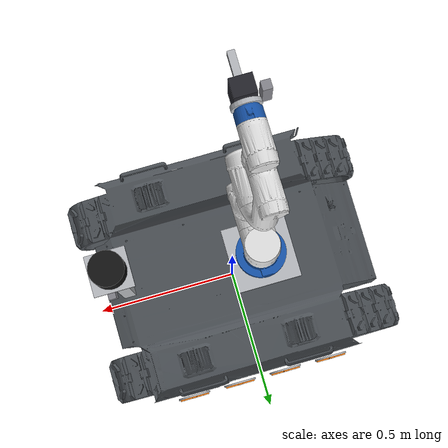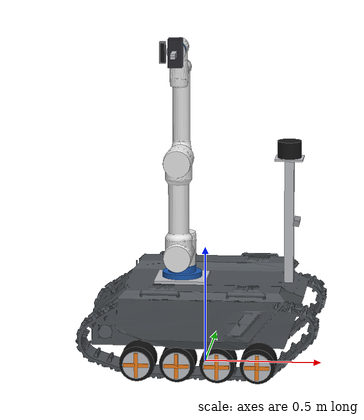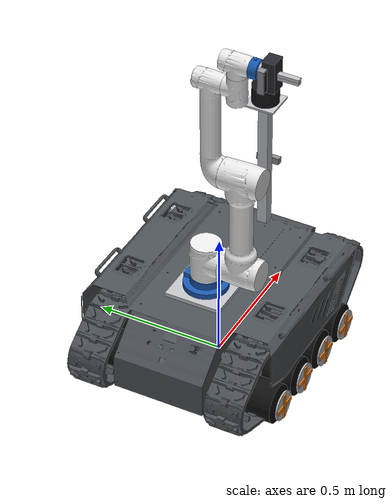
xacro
<?xml version="1.0"?>
<robot name="bunker_aubo" xmlns:xacro="http://www.ros.org/wiki/xacro">

  <xacro:arg name="sim_gazebo" default="true"/>
  <xacro:arg name="controllers_config" default=""/>
  <xacro:arg name="sensors_config" default="$(find bunker_aubo_description)/config/sensors.yaml"/>
  <xacro:arg name="initial_positions" default="$(find bunker_aubo_description)/config/initial_positions.yaml"/>

  <xacro:property name="sensors_cfg" value="${xacro.load_yaml('$(arg sensors_config)')}"/>
  <xacro:property name="initial_positions" value="${xacro.load_yaml('$(arg initial_positions)')}"/>

  <xacro:include filename="$(find bunker_aubo_description)/urdf/common/inertial_macros.xacro"/>
  <xacro:include filename="$(find bunker_aubo_description)/urdf/common/materials.xacro"/>
  <xacro:include filename="$(find bunker_aubo_description)/urdf/bunker/bunker_base.xacro"/>
  <xacro:include filename="$(find bunker_aubo_description)/urdf/aubo/aubo_i5.xacro"/>
  <xacro:include filename="$(find bunker_aubo_description)/urdf/gripper/parallel_gripper.xacro"/>
  <xacro:include filename="$(find bunker_aubo_description)/urdf/sensors/imu.xacro"/>
  <xacro:include filename="$(find bunker_aubo_description)/urdf/sensors/vlp16.xacro"/>
  <xacro:include filename="$(find bunker_aubo_description)/urdf/sensors/d435.xacro"/>
  <xacro:include filename="$(find bunker_aubo_description)/urdf/control/ros2_control.xacro"/>
  <xacro:include filename="$(find bunker_aubo_description)/urdf/gazebo.xacro"/>

  <xacro:bunker_base/>

  <xacro:aubo_i5 parent="arm_mount_link">
    <origin xyz="0 0 ${arm_mount_thick}" rpy="0 0 0"/>
  </xacro:aubo_i5>

  <xacro:parallel_gripper parent="tool0">
    <origin xyz="0 0 0" rpy="0 0 0"/>
  </xacro:parallel_gripper>

  <xacro:imu_sensor name="imu" parent="base_link">
    <origin xyz="0 0 0.10" rpy="0 0 0"/>
  </xacro:imu_sensor>

  <xacro:vlp16 name="lidar" parent="sensor_mast_link">
    <origin xyz="0 0 ${mast_top - deck_height + vlp_h / 2.0}" rpy="0 0 0"/>
  </xacro:vlp16>

  <xacro:d435 name="base_camera" parent="sensor_mast_link">
    <origin xyz="${mast_size / 2.0 + 0.025} 0 ${0.62 - deck_height}" rpy="0 ${radians(10)} 0"/>
  </xacro:d435>

  <xacro:d435 name="wrist_camera" parent="tool0">
    <origin xyz="-0.055 0 0.040" rpy="0 ${-pi/2} 0"/>
  </xacro:d435>

  <xacro:if value="$(arg sim_gazebo)">
    <xacro:bunker_aubo_ros2_control hardware_plugin="gz_ros2_control/GazeboSimSystem"/>
    <xacro:bunker_aubo_gazebo controllers_config="$(arg controllers_config)"/>
  </xacro:if>

</robot>

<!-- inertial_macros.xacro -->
<robot xmlns:xacro="http://www.ros.org/wiki/xacro">

  <xacro:macro name="box_inertia" params="m x y z *origin">
    <inertial>
      <xacro:insert_block name="origin"/>
      <mass value="${m}"/>
      <inertia ixx="${m / 12.0 * (y*y + z*z)}" ixy="0.0" ixz="0.0"
               iyy="${m / 12.0 * (x*x + z*z)}" iyz="0.0"
               izz="${m / 12.0 * (x*x + y*y)}"/>
    </inertial>
  </xacro:macro>

  <xacro:macro name="cylinder_inertia" params="m r h *origin">
    <inertial>
      <xacro:insert_block name="origin"/>
      <mass value="${m}"/>
      <inertia ixx="${m / 12.0 * (3*r*r + h*h)}" ixy="0.0" ixz="0.0"
               iyy="${m / 12.0 * (3*r*r + h*h)}" iyz="0.0"
               izz="${m / 2.0 * r*r}"/>
    </inertial>
  </xacro:macro>

</robot>

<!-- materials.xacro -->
<robot xmlns:xacro="http://www.ros.org/wiki/xacro">
  <material name="bunker_grey"><color rgba="0.30 0.32 0.34 1.0"/></material>
  <material name="track_black"><color rgba="0.06 0.06 0.06 1.0"/></material>
  <material name="aluminium"><color rgba="0.75 0.76 0.78 1.0"/></material>
  <material name="aubo_white"><color rgba="0.92 0.92 0.92 1.0"/></material>
  <material name="aubo_blue"><color rgba="0.10 0.35 0.70 1.0"/></material>
  <material name="gripper_dark"><color rgba="0.15 0.15 0.18 1.0"/></material>
  <material name="sensor_black"><color rgba="0.08 0.08 0.08 1.0"/></material>
  <material name="realsense_grey"><color rgba="0.55 0.55 0.58 1.0"/></material>
  <material name="imu_orange"><color rgba="0.95 0.50 0.10 1.0"/></material>
</robot>

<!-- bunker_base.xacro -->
<robot xmlns:xacro="http://www.ros.org/wiki/xacro">

  <xacro:property name="wheel_radius"      value="0.075"/>
  <xacro:property name="wheel_width"       value="0.12"/>
  <xacro:property name="wheel_mass"        value="2.0"/>
  <xacro:property name="track_y"           value="0.315"/>  <xacro:property name="wheel_x_positions" value="${[0.255, 0.085, -0.085, -0.255]}"/>

  <xacro:property name="chassis_mass"      value="110.0"/>
  <xacro:property name="deck_height"       value="0.358"/>  <xacro:property name="ground_clearance"  value="0.09"/>
  <xacro:property name="body_length"       value="0.90"/>
  <xacro:property name="body_width"        value="0.48"/>
  <xacro:property name="track_length"      value="1.00"/>
  <xacro:property name="track_cy"          value="0.32"/>   <!-- shell centre (y), mesh: 0.25 .. 0.39 -->
  <xacro:property name="track_width"       value="0.14"/>
  <xacro:property name="track_top"         value="0.39"/>
  <xacro:property name="track_col_bottom"  value="0.16"/>   <!-- upper run: above the wheels (0.15) -->
  <xacro:property name="track_run_front"   value="0.38"/>
  <xacro:property name="track_run_rear"    value="-0.36"/>
  <xacro:property name="track_end_thick"   value="0.13"/>
  <!-- sloped ends: lower edge from (x0, z0) to (x1, z1) -->
  <xacro:property name="front_x0" value="0.33"/>  <xacro:property name="front_z0" value="0.02"/>
  <xacro:property name="front_x1" value="0.50"/>  <xacro:property name="front_z1" value="0.19"/>
  <xacro:property name="rear_x0"  value="-0.33"/> <xacro:property name="rear_z0"  value="0.02"/>
  <xacro:property name="rear_x1"  value="-0.51"/> <xacro:property name="rear_z1"  value="0.17"/>
  <xacro:property name="mast_x"            value="0.36"/>
  <xacro:property name="mast_size"         value="0.04"/>
  <xacro:property name="mast_top"          value="0.90"/>

  <xacro:property name="arm_mount_x"       value="-0.10"/>
  <xacro:property name="arm_mount_size"    value="0.22"/>
  <xacro:property name="arm_mount_thick"   value="0.015"/>

  <xacro:property name="bl" value="${wheel_radius}"/>

  <!-- Collision boxes of one track shell (all inside base_link). -->
  <xacro:macro name="track_collision" params="side y">
    <collision name="${side}_track_run_collision">
      <origin xyz="${(track_run_front + track_run_rear) / 2.0} ${y} ${(track_col_bottom + track_top) / 2.0 - bl}" rpy="0 0 0"/>
      <geometry>
        <box size="${track_run_front - track_run_rear} ${track_width} ${track_top - track_col_bottom}"/>
      </geometry>
    </collision>
    <xacro:track_end side="${side}" end="front" y="${y}" x0="${front_x0}" z0="${front_z0}" x1="${front_x1}" z1="${front_z1}"/>
    <xacro:track_end side="${side}" end="rear"  y="${y}" x0="${rear_x0}"  z0="${rear_z0}"  x1="${rear_x1}"  z1="${rear_z1}"/>
  </xacro:macro>

  <!-- A box whose bottom face runs along the sloped lower edge (x0,z0)->(x1,z1) of a track end
       and that is track_end_thick deep into the track. -->
  <xacro:macro name="track_end" params="side end y x0 z0 x1 z1">
    <xacro:property name="end_len" value="${sqrt((x1 - x0)**2 + (z1 - z0)**2)}"/>
    <xacro:property name="ux"  value="${(x1 - x0) / end_len}"/>
    <xacro:property name="uz"  value="${(z1 - z0) / end_len}"/>
    <!-- inward normal: the edge direction turned towards the robot centre and upwards -->
    <xacro:property name="sgn" value="${1.0 if x1 > x0 else -1.0}"/>
    <xacro:property name="nx"  value="${-uz * sgn}"/>
    <xacro:property name="nz"  value="${ux * sgn}"/>
    <collision name="${side}_track_${end}_collision">
      <origin xyz="${(x0 + x1) / 2.0 + nx * track_end_thick / 2.0} ${y} ${(z0 + z1) / 2.0 + nz * track_end_thick / 2.0 - bl}"
              rpy="0 ${atan2(nx, nz)} 0"/>
      <geometry>
        <box size="${end_len} ${track_width} ${track_end_thick}"/>
      </geometry>
    </collision>
  </xacro:macro>

  <xacro:macro name="bunker_base">

    <link name="base_footprint"/>

    <joint name="base_footprint_joint" type="fixed">
      <parent link="base_footprint"/>
      <child link="base_link"/>
      <origin xyz="0 0 ${wheel_radius}" rpy="0 0 0"/>
    </joint>

    <link name="base_link">
      <visual>
        <origin xyz="0 0 ${-bl}" rpy="0 0 0"/>
        <geometry>
          <mesh filename="file://$(find bunker_aubo_description)/meshes/bunker/bunker_body.stl"/>
        </geometry>
        <material name="bunker_grey"/>
      </visual>

      <collision name="chassis_collision">
        <origin xyz="0 0 ${(ground_clearance + deck_height) / 2.0 - bl}" rpy="0 0 0"/>
        <geometry>
          <box size="${body_length} ${body_width} ${deck_height - ground_clearance}"/>
        </geometry>
      </collision>
      <xacro:track_collision side="left"  y="${track_cy}"/>
      <xacro:track_collision side="right" y="${-track_cy}"/>

      <xacro:box_inertia m="${chassis_mass}" x="${track_length}" y="0.78" z="0.30">
        <origin xyz="0 0 ${0.19 - bl}" rpy="0 0 0"/>
      </xacro:box_inertia>
    </link>

    <xacro:macro name="road_wheel" params="side index x y">
      <link name="${side}_wheel_${index}_link">
        <visual>
          <origin xyz="0 0 0" rpy="${pi/2} 0 0"/>
          <geometry><cylinder radius="${wheel_radius}" length="${wheel_width}"/></geometry>
          <material name="track_black"/>
        </visual>
        <!-- Visual only: hub cap with two spokes on the outside of the track, so the wheel (and
             therefore the track drive) is seen turning in Gazebo and RViz. No collision. -->
        <xacro:property name="hub_s" value="${1.0 if y > 0 else -1.0}"/>
        <xacro:property name="hub_y" value="${hub_s * 0.394 - y}"/>
        <visual>
          <origin xyz="0 ${hub_y} 0" rpy="${pi/2} 0 0"/>
          <geometry><cylinder radius="0.058" length="0.006"/></geometry>
          <material name="aluminium"/>
        </visual>
        <visual>
          <origin xyz="0 ${hub_y + hub_s * 0.005} 0" rpy="0 0 0"/>
          <geometry><box size="0.105 0.006 0.016"/></geometry>
          <material name="imu_orange"/>
        </visual>
        <visual>
          <origin xyz="0 ${hub_y + hub_s * 0.005} 0" rpy="0 0 0"/>
          <geometry><box size="0.016 0.006 0.105"/></geometry>
          <material name="imu_orange"/>
        </visual>
        <collision>
          <origin xyz="0 0 0" rpy="${pi/2} 0 0"/>
          <geometry><cylinder radius="${wheel_radius}" length="${wheel_width}"/></geometry>
        </collision>
        <xacro:cylinder_inertia m="${wheel_mass}" r="${wheel_radius}" h="${wheel_width}">
          <origin xyz="0 0 0" rpy="${pi/2} 0 0"/>
        </xacro:cylinder_inertia>
      </link>

      <joint name="${side}_wheel_${index}_joint" type="continuous">
        <parent link="base_link"/>
        <child link="${side}_wheel_${index}_link"/>
        <origin xyz="${x} ${y} 0" rpy="0 0 0"/>
        <axis xyz="0 1 0"/>
        <limit effort="120.0" velocity="22.0"/>
        <dynamics damping="0.2" friction="0.0"/>
      </joint>

      <gazebo reference="${side}_wheel_${index}_link">
        <mu1>0.6</mu1>
        <mu2>1.0</mu2>
        <fdir1>0 0 1</fdir1>
      </gazebo>
    </xacro:macro>

    <xacro:road_wheel side="left"  index="1" x="${wheel_x_positions[0]}" y="${track_y}"/>
    <xacro:road_wheel side="left"  index="2" x="${wheel_x_positions[1]}" y="${track_y}"/>
    <xacro:road_wheel side="left"  index="3" x="${wheel_x_positions[2]}" y="${track_y}"/>
    <xacro:road_wheel side="left"  index="4" x="${wheel_x_positions[3]}" y="${track_y}"/>
    <xacro:road_wheel side="right" index="1" x="${wheel_x_positions[0]}" y="${-track_y}"/>
    <xacro:road_wheel side="right" index="2" x="${wheel_x_positions[1]}" y="${-track_y}"/>
    <xacro:road_wheel side="right" index="3" x="${wheel_x_positions[2]}" y="${-track_y}"/>
    <xacro:road_wheel side="right" index="4" x="${wheel_x_positions[3]}" y="${-track_y}"/>

    <link name="sensor_mast_link">
      <visual>
        <origin xyz="0 0 ${(mast_top - deck_height) / 2.0}" rpy="0 0 0"/>
        <geometry><box size="${mast_size} ${mast_size} ${mast_top - deck_height}"/></geometry>
        <material name="aluminium"/>
      </visual>
      <visual>
        <origin xyz="0 0 ${mast_top - deck_height - 0.004}" rpy="0 0 0"/>
        <geometry><box size="0.12 0.12 0.008"/></geometry>
        <material name="aluminium"/>
      </visual>
      <collision>
        <origin xyz="0 0 ${(mast_top - deck_height) / 2.0}" rpy="0 0 0"/>
        <geometry><box size="${mast_size} ${mast_size} ${mast_top - deck_height}"/></geometry>
      </collision>
      <xacro:box_inertia m="1.2" x="${mast_size}" y="${mast_size}" z="${mast_top - deck_height}">
        <origin xyz="0 0 ${(mast_top - deck_height) / 2.0}" rpy="0 0 0"/>
      </xacro:box_inertia>
    </link>

    <joint name="sensor_mast_joint" type="fixed">
      <parent link="base_link"/>
      <child link="sensor_mast_link"/>
      <origin xyz="${mast_x} 0 ${deck_height - bl}" rpy="0 0 0"/>
    </joint>

    <link name="arm_mount_link">
      <visual>
        <origin xyz="0 0 ${arm_mount_thick / 2.0}" rpy="0 0 0"/>
        <geometry><box size="${arm_mount_size} ${arm_mount_size} ${arm_mount_thick}"/></geometry>
        <material name="aluminium"/>
      </visual>
      <collision>
        <origin xyz="0 0 ${arm_mount_thick / 2.0}" rpy="0 0 0"/>
        <geometry><box size="${arm_mount_size} ${arm_mount_size} ${arm_mount_thick}"/></geometry>
      </collision>
      <xacro:box_inertia m="1.5" x="${arm_mount_size}" y="${arm_mount_size}" z="${arm_mount_thick}">
        <origin xyz="0 0 ${arm_mount_thick / 2.0}" rpy="0 0 0"/>
      </xacro:box_inertia>
    </link>

    <joint name="arm_mount_joint" type="fixed">
      <parent link="base_link"/>
      <child link="arm_mount_link"/>
      <origin xyz="${arm_mount_x} 0 ${deck_height - bl}" rpy="0 0 0"/>
    </joint>

  </xacro:macro>
</robot>

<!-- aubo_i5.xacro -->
<robot xmlns:xacro="http://www.ros.org/wiki/xacro">

  <xacro:property name="aubo_lim"     value="3.04"/>
  <xacro:property name="aubo_vel_big" value="2.618"/>  <xacro:property name="aubo_vel_wr"  value="3.1416"/>  <xacro:property name="aubo_mesh"    value="file://$(find bunker_aubo_description)/meshes/aubo_i5"/>

  <xacro:macro name="aubo_link" params="name mesh mass cx cy cz ixx iyy izz ixy:=0 ixz:=0 iyz:=0 material:=aubo_white">
    <link name="${name}">
      <inertial>
        <origin xyz="${cx} ${cy} ${cz}" rpy="0 0 0"/>
        <mass value="${mass}"/>
        <inertia ixx="${ixx}" ixy="${ixy}" ixz="${ixz}" iyy="${iyy}" iyz="${iyz}" izz="${izz}"/>
      </inertial>
      <visual>
        <origin xyz="0 0 0" rpy="0 0 0"/>
        <geometry><mesh filename="${aubo_mesh}/visual/${mesh}.stl"/></geometry>
        <material name="${material}"/>
      </visual>
      <collision>
        <origin xyz="0 0 0" rpy="0 0 0"/>
        <geometry><mesh filename="${aubo_mesh}/collision/${mesh}.stl"/></geometry>
      </collision>
    </link>
  </xacro:macro>

  <xacro:macro name="aubo_i5" params="parent *origin">

    <joint name="aubo_mount_joint" type="fixed">
      <parent link="${parent}"/>
      <child link="aubo_base_link"/>
      <xacro:insert_block name="origin"/>
    </joint>

    <xacro:aubo_link name="aubo_base_link" mesh="base_link" mass="0.83419"
                     cx="0" cy="0.0015384" cz="0.020951"
                     ixx="0.0014414" iyy="0.0013542" izz="0.0024659" iyz="-1.4364e-05"
                     material="aubo_blue"/>

    <xacro:aubo_link name="shoulder_Link" mesh="shoulder_Link" mass="1.57658"
                     cx="0" cy="0.0053496" cz="-0.0088369"
                     ixx="0.0040640" iyy="0.0039286" izz="0.0030870" iyz="-0.00016015"/>

    <xacro:aubo_link name="upperArm_Link" mesh="upperArm_Link" mass="4.04176"
                     cx="0.20400" cy="0" cz="0.012764"
                     ixx="0.0096540" iyy="0.14499" izz="0.14261"/>

    <xacro:aubo_link name="foreArm_Link" mesh="foreArm_Link" mass="2.27146"
                     cx="0.18892" cy="0" cz="0.098103"
                     ixx="0.0021432" iyy="0.044393" izz="0.044127" ixz="-0.00073121"/>

    <xacro:aubo_link name="wrist1_Link" mesh="wrist1_Link" mass="0.50048"
                     cx="0" cy="0.0062481" cz="-0.0039237"
                     ixx="0.00071195" iyy="0.00040588" izz="0.00068557" iyz="-2.3081e-05"/>

    <xacro:aubo_link name="wrist2_Link" mesh="wrist2_Link" mass="0.50048"
                     cx="0" cy="-0.0062481" cz="-0.0039237"
                     ixx="0.00071195" iyy="0.00040588" izz="0.00068557" iyz="2.3081e-05"/>

    <xacro:aubo_link name="wrist3_Link" mesh="wrist3_Link" mass="0.15831"
                     cx="0" cy="0.00017579" cz="-0.021329"
                     ixx="7.3138e-05" iyy="7.1953e-05" izz="0.00010877"
                     material="aubo_blue"/>

    <joint name="shoulder_joint" type="revolute">
      <parent link="aubo_base_link"/>
      <child link="shoulder_Link"/>
      <origin xyz="0 0 0.122" rpy="0 0 ${pi}"/>
      <axis xyz="0 0 1"/>
      <limit lower="${-aubo_lim}" upper="${aubo_lim}" effort="150.0" velocity="${aubo_vel_big}"/>
      <dynamics damping="1.0" friction="0.0"/>
    </joint>

    <joint name="upperArm_joint" type="revolute">
      <parent link="shoulder_Link"/>
      <child link="upperArm_Link"/>
      <origin xyz="0 0.1215 0" rpy="${-pi/2} ${-pi/2} 0"/>
      <axis xyz="0 0 1"/>
      <limit lower="${-aubo_lim}" upper="${aubo_lim}" effort="150.0" velocity="${aubo_vel_big}"/>
      <dynamics damping="1.0" friction="0.0"/>
    </joint>

    <joint name="foreArm_joint" type="revolute">
      <parent link="upperArm_Link"/>
      <child link="foreArm_Link"/>
      <origin xyz="0.408 0 0" rpy="${-pi} 0 0"/>
      <axis xyz="0 0 1"/>
      <limit lower="${-aubo_lim}" upper="${aubo_lim}" effort="150.0" velocity="${aubo_vel_big}"/>
      <dynamics damping="1.0" friction="0.0"/>
    </joint>

    <joint name="wrist1_joint" type="revolute">
      <parent link="foreArm_Link"/>
      <child link="wrist1_Link"/>
      <origin xyz="0.376 0 0" rpy="${pi} 0 ${pi/2}"/>
      <axis xyz="0 0 1"/>
      <limit lower="${-aubo_lim}" upper="${aubo_lim}" effort="28.0" velocity="${aubo_vel_wr}"/>
      <dynamics damping="0.3" friction="0.0"/>
    </joint>

    <joint name="wrist2_joint" type="revolute">
      <parent link="wrist1_Link"/>
      <child link="wrist2_Link"/>
      <origin xyz="0 0.1025 0" rpy="${-pi/2} 0 0"/>
      <axis xyz="0 0 1"/>
      <limit lower="${-aubo_lim}" upper="${aubo_lim}" effort="28.0" velocity="${aubo_vel_wr}"/>
      <dynamics damping="0.3" friction="0.0"/>
    </joint>

    <joint name="wrist3_joint" type="revolute">
      <parent link="wrist2_Link"/>
      <child link="wrist3_Link"/>
      <origin xyz="0 -0.094 0" rpy="${pi/2} 0 0"/>
      <axis xyz="0 0 1"/>
      <limit lower="${-aubo_lim}" upper="${aubo_lim}" effort="28.0" velocity="${aubo_vel_wr}"/>
      <dynamics damping="0.3" friction="0.0"/>
    </joint>

    <link name="tool0"/>
    <joint name="tool0_joint" type="fixed">
      <parent link="wrist3_Link"/>
      <child link="tool0"/>
      <origin xyz="0 0 0" rpy="0 0 0"/>
    </joint>

  </xacro:macro>
</robot>

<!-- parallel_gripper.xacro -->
<robot xmlns:xacro="http://www.ros.org/wiki/xacro">

  <xacro:property name="grip_body_x"   value="0.06"/>
  <xacro:property name="grip_body_y"   value="0.12"/>
  <xacro:property name="grip_body_z"   value="0.05"/>
  <xacro:property name="coupling_r"    value="0.04"/>
  <xacro:property name="coupling_h"    value="0.012"/>
  <xacro:property name="finger_x"      value="0.02"/>
  <xacro:property name="finger_y"      value="0.012"/>
  <xacro:property name="finger_z"      value="0.08"/>
  <xacro:property name="finger_stroke" value="0.04"/>

  <xacro:macro name="parallel_gripper" params="parent *origin">

    <joint name="gripper_mount_joint" type="fixed">
      <parent link="${parent}"/>
      <child link="gripper_base_link"/>
      <xacro:insert_block name="origin"/>
    </joint>

    <link name="gripper_base_link">
      <visual>
        <origin xyz="0 0 ${coupling_h / 2.0}" rpy="0 0 0"/>
        <geometry><cylinder radius="${coupling_r}" length="${coupling_h}"/></geometry>
        <material name="aluminium"/>
      </visual>
      <visual>
        <origin xyz="0 0 ${coupling_h + grip_body_z / 2.0}" rpy="0 0 0"/>
        <geometry><box size="${grip_body_x} ${grip_body_y} ${grip_body_z}"/></geometry>
        <material name="gripper_dark"/>
      </visual>
      <collision>
        <origin xyz="0 0 ${(coupling_h + grip_body_z) / 2.0}" rpy="0 0 0"/>
        <geometry><box size="${grip_body_x} ${grip_body_y} ${coupling_h + grip_body_z}"/></geometry>
      </collision>
      <xacro:box_inertia m="0.6" x="${grip_body_x}" y="${grip_body_y}" z="${coupling_h + grip_body_z}">
        <origin xyz="0 0 ${(coupling_h + grip_body_z) / 2.0}" rpy="0 0 0"/>
      </xacro:box_inertia>
    </link>

    <xacro:macro name="finger" params="side sign">
      <link name="gripper_${side}_finger_link">
        <visual>
          <origin xyz="0 ${sign * finger_y / 2.0} ${finger_z / 2.0}" rpy="0 0 0"/>
          <geometry><box size="${finger_x} ${finger_y} ${finger_z}"/></geometry>
          <material name="aluminium"/>
        </visual>
        <collision>
          <origin xyz="0 ${sign * finger_y / 2.0} ${finger_z / 2.0}" rpy="0 0 0"/>
          <geometry><box size="${finger_x} ${finger_y} ${finger_z}"/></geometry>
        </collision>
        <xacro:box_inertia m="0.05" x="${finger_x}" y="${finger_y}" z="${finger_z}">
          <origin xyz="0 ${sign * finger_y / 2.0} ${finger_z / 2.0}" rpy="0 0 0"/>
        </xacro:box_inertia>
      </link>

      <joint name="gripper_${side}_finger_joint" type="prismatic">
        <parent link="gripper_base_link"/>
        <child link="gripper_${side}_finger_link"/>
        <origin xyz="0 0 ${coupling_h + grip_body_z}" rpy="0 0 0"/>
        <axis xyz="0 ${sign} 0"/>
        <limit lower="0.0" upper="${finger_stroke}" effort="60.0" velocity="0.15"/>
        <dynamics damping="1.0" friction="0.0"/>
      </joint>

      <gazebo reference="gripper_${side}_finger_link">
        <mu1>1.2</mu1>
        <mu2>1.2</mu2>
      </gazebo>
    </xacro:macro>

    <xacro:finger side="left"  sign="1"/>
    <xacro:finger side="right" sign="-1"/>

    <link name="gripper_tcp"/>
    <joint name="gripper_tcp_joint" type="fixed">
      <parent link="gripper_base_link"/>
      <child link="gripper_tcp"/>
      <origin xyz="0 0 ${coupling_h + grip_body_z + finger_z - 0.01}" rpy="0 0 0"/>
    </joint>

  </xacro:macro>
</robot>

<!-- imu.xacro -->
<robot xmlns:xacro="http://www.ros.org/wiki/xacro">

  <xacro:macro name="imu_noise_axis" params="axis stddev bias_mean bias_stddev">
    <xacro:element xacro:name="${axis}">
      <noise type="gaussian">
        <mean>0.0</mean>
        <stddev>${stddev}</stddev>
        <bias_mean>${bias_mean}</bias_mean>
        <bias_stddev>${bias_stddev}</bias_stddev>
      </noise>
    </xacro:element>
  </xacro:macro>

  <xacro:macro name="imu_sensor" params="name parent *origin">
    <xacro:property name="c" value="${sensors_cfg['imu']}"/>

    <joint name="${name}_joint" type="fixed">
      <parent link="${parent}"/>
      <child link="${name}_link"/>
      <xacro:insert_block name="origin"/>
    </joint>

    <link name="${name}_link">
      <visual>
        <geometry><box size="0.04 0.03 0.012"/></geometry>
        <material name="imu_orange"/>
      </visual>
      <collision>
        <geometry><box size="0.04 0.03 0.012"/></geometry>
      </collision>
      <xacro:box_inertia m="0.02" x="0.04" y="0.03" z="0.012">
        <origin xyz="0 0 0" rpy="0 0 0"/>
      </xacro:box_inertia>
    </link>

    <gazebo reference="${name}_link">
      <sensor name="${name}_sensor" type="imu">
        <always_on>true</always_on>
        <update_rate>${c['update_rate']}</update_rate>
        <visualize>false</visualize>
        <topic>imu</topic>
        <gz_frame_id>${name}_link</gz_frame_id>
        <imu>
          <angular_velocity>
            <xacro:imu_noise_axis axis="x" stddev="${c['gyro_noise_stddev']}" bias_mean="${c['gyro_bias_mean']}" bias_stddev="${c['gyro_bias_stddev']}"/>
            <xacro:imu_noise_axis axis="y" stddev="${c['gyro_noise_stddev']}" bias_mean="${c['gyro_bias_mean']}" bias_stddev="${c['gyro_bias_stddev']}"/>
            <xacro:imu_noise_axis axis="z" stddev="${c['gyro_noise_stddev']}" bias_mean="${c['gyro_bias_mean']}" bias_stddev="${c['gyro_bias_stddev']}"/>
          </angular_velocity>
          <linear_acceleration>
            <xacro:imu_noise_axis axis="x" stddev="${c['accel_noise_stddev']}" bias_mean="${c['accel_bias_mean']}" bias_stddev="${c['accel_bias_stddev']}"/>
            <xacro:imu_noise_axis axis="y" stddev="${c['accel_noise_stddev']}" bias_mean="${c['accel_bias_mean']}" bias_stddev="${c['accel_bias_stddev']}"/>
            <xacro:imu_noise_axis axis="z" stddev="${c['accel_noise_stddev']}" bias_mean="${c['accel_bias_mean']}" bias_stddev="${c['accel_bias_stddev']}"/>
          </linear_acceleration>
        </imu>
      </sensor>
    </gazebo>
  </xacro:macro>
</robot>

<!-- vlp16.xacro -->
<robot xmlns:xacro="http://www.ros.org/wiki/xacro">

  <xacro:property name="vlp_r" value="0.05165"/>
  <xacro:property name="vlp_h" value="0.0717"/>

  <xacro:macro name="vlp16" params="name parent *origin">
    <xacro:property name="c" value="${sensors_cfg['lidar']}"/>
    <xacro:property name="h_step" value="${2.0 * pi / c['horizontal_samples']}"/>

    <joint name="${name}_joint" type="fixed">
      <parent link="${parent}"/>
      <child link="${name}_link"/>
      <xacro:insert_block name="origin"/>
    </joint>

    <link name="${name}_link">
      <visual>
        <geometry><cylinder radius="${vlp_r}" length="${vlp_h}"/></geometry>
        <material name="sensor_black"/>
      </visual>
      <collision>
        <geometry><cylinder radius="${vlp_r}" length="${vlp_h}"/></geometry>
      </collision>
      <xacro:cylinder_inertia m="0.83" r="${vlp_r}" h="${vlp_h}">
        <origin xyz="0 0 0" rpy="0 0 0"/>
      </xacro:cylinder_inertia>
    </link>

    <gazebo reference="${name}_link">
      <sensor name="${name}_sensor" type="gpu_lidar">
        <always_on>true</always_on>
        <visualize>false</visualize>
        <update_rate>${c['update_rate']}</update_rate>
        <topic>lidar</topic>
        <gz_frame_id>${name}_link</gz_frame_id>
        <lidar>
          <scan>
            <horizontal>
              <samples>${c['horizontal_samples']}</samples>
              <resolution>1</resolution>
              <min_angle>${-pi}</min_angle>
              <max_angle>${pi - h_step}</max_angle>
            </horizontal>
            <vertical>
              <samples>${c['vertical_samples']}</samples>
              <resolution>1</resolution>
              <min_angle>${c['vertical_min_angle']}</min_angle>
              <max_angle>${c['vertical_max_angle']}</max_angle>
            </vertical>
          </scan>
          <range>
            <min>${c['range_min']}</min>
            <max>${c['range_max']}</max>
            <resolution>${c['range_resolution']}</resolution>
          </range>
          <noise>
            <type>gaussian</type>
            <mean>0.0</mean>
            <stddev>${c['noise_stddev']}</stddev>
          </noise>
        </lidar>
      </sensor>
    </gazebo>
  </xacro:macro>
</robot>

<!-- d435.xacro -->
<robot xmlns:xacro="http://www.ros.org/wiki/xacro">

  <xacro:macro name="d435" params="name parent *origin">
    <xacro:property name="c" value="${sensors_cfg['cameras'][name]}"/>

    <joint name="${name}_joint" type="fixed">
      <parent link="${parent}"/>
      <child link="${name}_link"/>
      <xacro:insert_block name="origin"/>
    </joint>

    <link name="${name}_link">
      <visual>
        <origin xyz="-0.0125 0 0" rpy="0 0 0"/>
        <geometry><box size="0.025 0.090 0.025"/></geometry>
        <material name="realsense_grey"/>
      </visual>
      <visual>
        <origin xyz="0.0002 0 0" rpy="0 0 0"/>
        <geometry><box size="0.001 0.080 0.018"/></geometry>
        <material name="sensor_black"/>
      </visual>
      <collision>
        <origin xyz="-0.0125 0 0" rpy="0 0 0"/>
        <geometry><box size="0.025 0.090 0.025"/></geometry>
      </collision>
      <xacro:box_inertia m="0.072" x="0.025" y="0.090" z="0.025">
        <origin xyz="-0.0125 0 0" rpy="0 0 0"/>
      </xacro:box_inertia>
    </link>

    <joint name="${name}_color_joint" type="fixed">
      <parent link="${name}_link"/>
      <child link="${name}_color_frame"/>
      <origin xyz="0 0 0" rpy="0 0 0"/>
    </joint>
    <link name="${name}_color_frame"/>

    <joint name="${name}_color_optical_joint" type="fixed">
      <parent link="${name}_color_frame"/>
      <child link="${name}_color_optical_frame"/>
      <origin xyz="0 0 0" rpy="${-pi/2} 0 ${-pi/2}"/>
    </joint>
    <link name="${name}_color_optical_frame"/>

    <joint name="${name}_depth_joint" type="fixed">
      <parent link="${name}_link"/>
      <child link="${name}_depth_frame"/>
      <origin xyz="0 0 0" rpy="0 0 0"/>
    </joint>
    <link name="${name}_depth_frame"/>

    <joint name="${name}_depth_optical_joint" type="fixed">
      <parent link="${name}_depth_frame"/>
      <child link="${name}_depth_optical_frame"/>
      <origin xyz="0 0 0" rpy="${-pi/2} 0 ${-pi/2}"/>
    </joint>
    <link name="${name}_depth_optical_frame"/>

    <gazebo reference="${name}_link">
      <sensor name="${name}_sensor" type="rgbd_camera">
        <always_on>true</always_on>
        <visualize>false</visualize>
        <update_rate>${c['update_rate']}</update_rate>
        <topic>${name}</topic>
        <gz_frame_id>${name}_color_optical_frame</gz_frame_id>
        <camera name="${name}">
          <horizontal_fov>${c['horizontal_fov']}</horizontal_fov>
          <image>
            <width>${c['width']}</width>
            <height>${c['height']}</height>
            <format>R8G8B8</format>
          </image>
          <clip>
            <near>${c['clip_near']}</near>
            <far>${c['clip_far']}</far>
          </clip>
          <depth_camera>
            <clip>
              <near>${c['depth_near']}</near>
              <far>${c['depth_far']}</far>
            </clip>
          </depth_camera>
          <noise>
            <type>gaussian</type>
            <mean>0.0</mean>
            <stddev>${c['rgb_noise_stddev']}</stddev>
          </noise>
        </camera>
      </sensor>
    </gazebo>
  </xacro:macro>
</robot>
